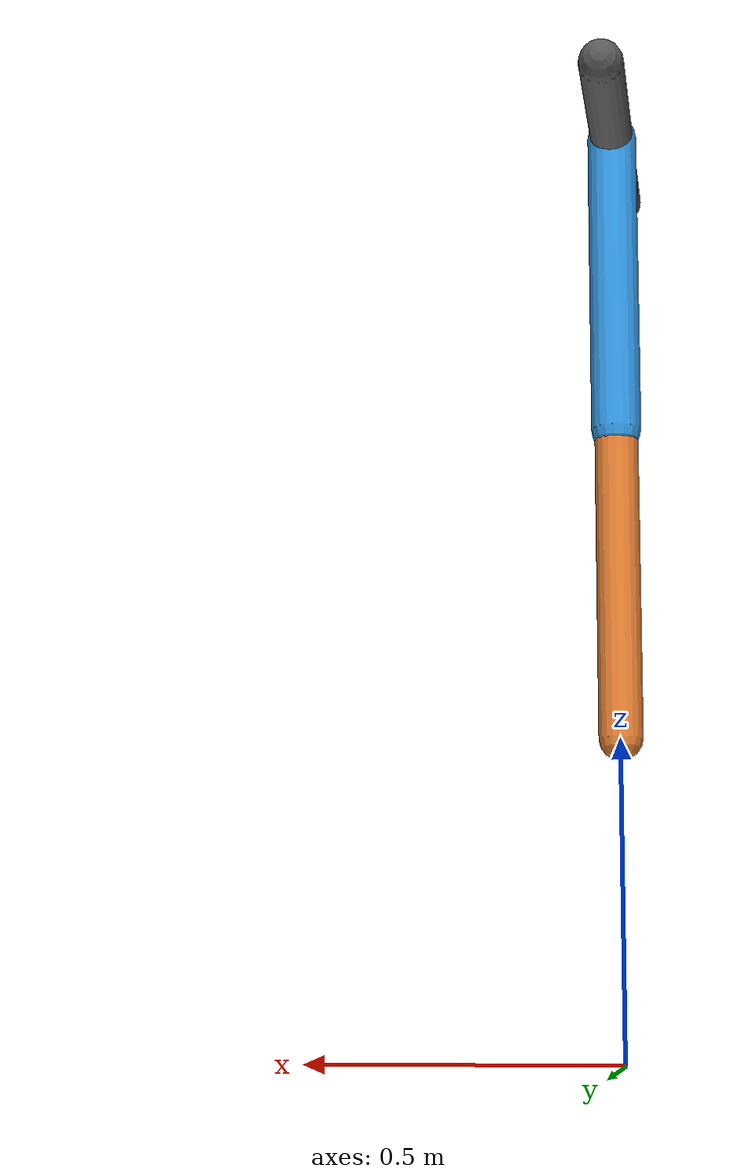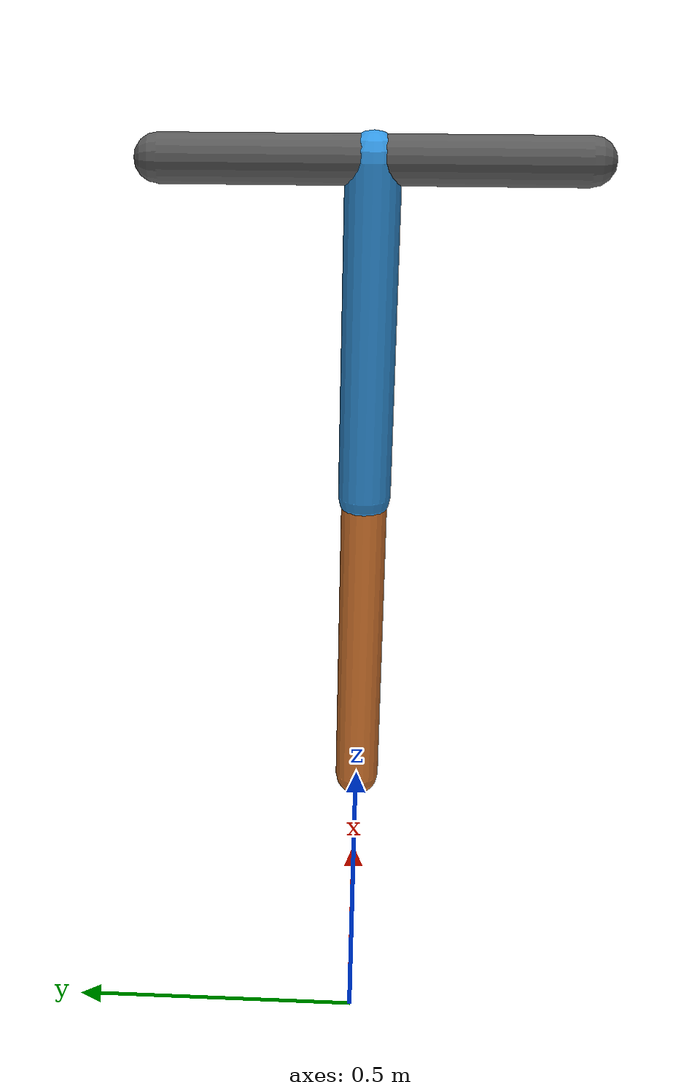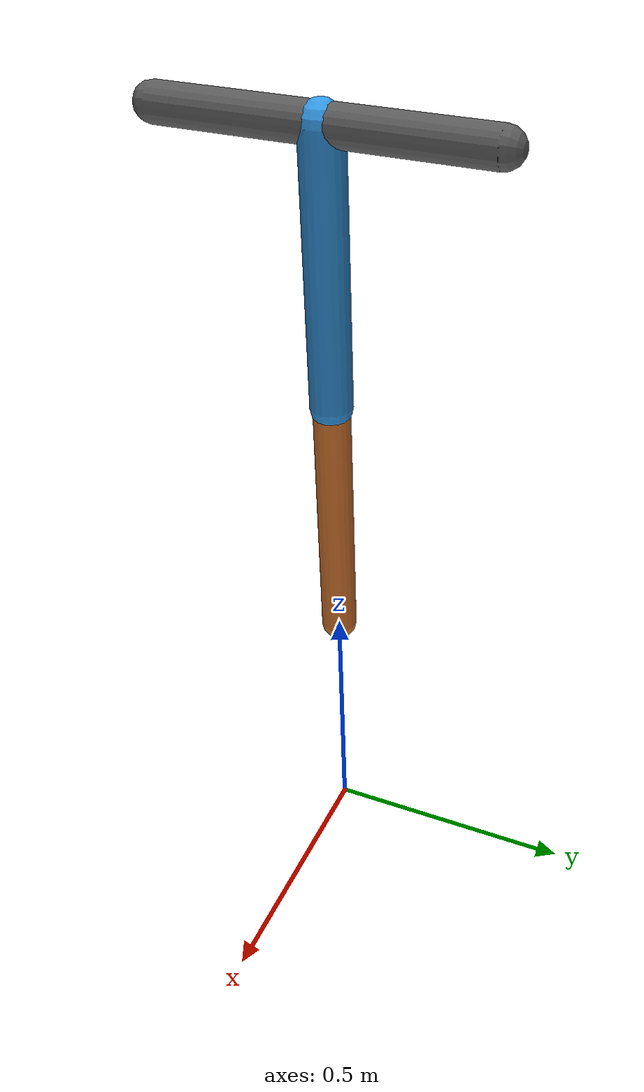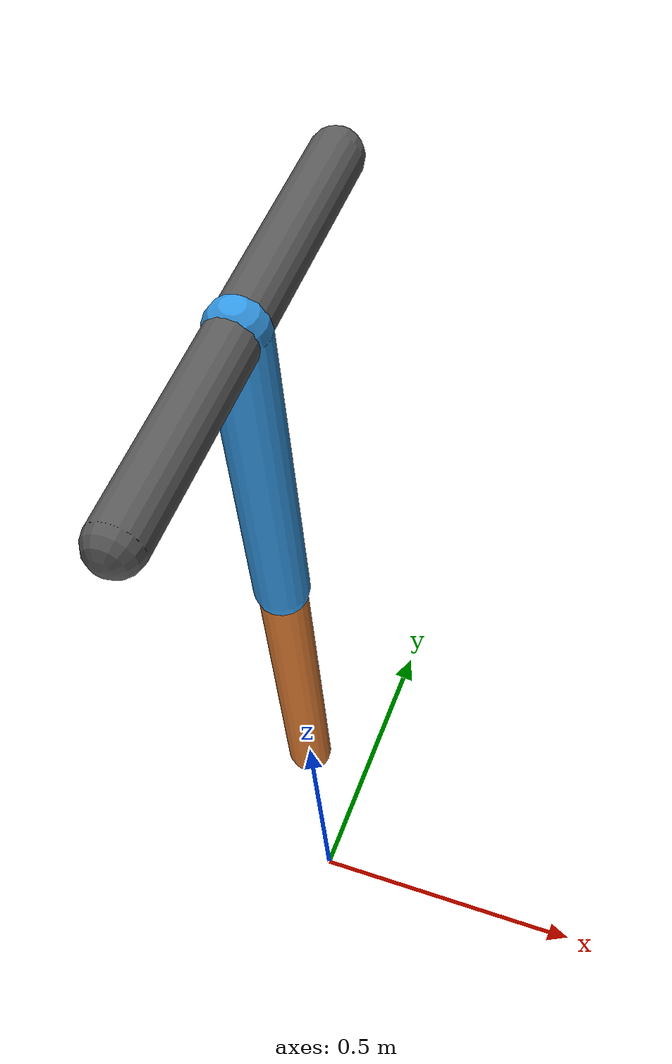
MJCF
<mujoco model="two_dof_leg">
  <compiler angle="radian"/>
  <option timestep="0.002" gravity="0 0 -9.81"/>

  <worldbody>
    <light pos="0 0 3"/>

    <geom name="support"
          type="capsule"
          fromto="0 -0.3 1.5  0 0.3 1.5"
          size="0.035"
          contype="0"
          conaffinity="0"
          rgba="0.35 0.35 0.35 1"/>

    <body name="thigh" pos="0 0 1.5">
      <joint name="hip_joint"
             type="hinge"
             axis="0 1 0"
             limited="true"
             range="-1.57 1.57"
             damping="0.3"/>
      <geom name="thigh_geom"
            type="capsule"
            fromto="0 0 0  0 0 -0.5"
            size="0.04"
            density="1000"
            rgba="0.2 0.6 0.9 1"/>

      <body name="shank" pos="0 0 -0.5">
        <joint name="knee_joint"
               type="hinge"
               axis="0 1 0"
               limited="true"
               range="-1.57 1.57"
               damping="0.3"/>
        <geom name="shank_geom"
              type="capsule"
              fromto="0 0 0  0 0 -0.5"
              size="0.035"
              density="1000"
              rgba="0.9 0.5 0.2 1"/>
      </body>
    </body>
  </worldbody>

  <actuator>
    <motor name="hip_motor" joint="hip_joint" gear="1"/>
    <motor name="knee_motor" joint="knee_joint" gear="1"/>
  </actuator>
</mujoco>
